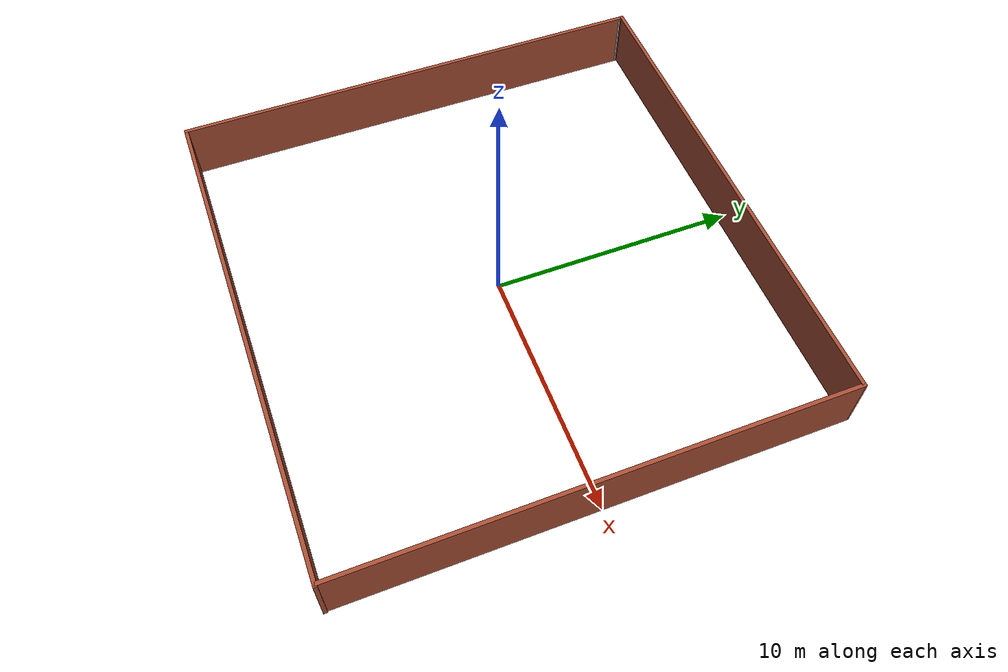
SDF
<?xml version='1.0'?>
<sdf version='1.6'>
  <model name='sample_world'>
    <pose frame=''>-0.087173 -0.037282 0 0 -0 0</pose>
    <link name='Wall_3'>
      <collision name='Wall_3_Collision'>
        <geometry>
          <box>
            <size>19.6806 0.15 2.5</size>
          </box>
        </geometry>
        <pose frame=''>0 0 1.25 0 -0 0</pose>
      </collision>
      <visual name='Wall_3_Visual'>
        <pose frame=''>0 0 1.25 0 -0 0</pose>
        <geometry>
          <box>
            <size>19.6806 0.15 2.5</size>
          </box>
        </geometry>
        <material>
          <script>
            <uri>file://media/materials/scripts/gazebo.material</uri>
            <name>Gazebo/Bricks</name>
          </script>
          <ambient>1 1 1 1</ambient>
        </material>
        <meta>
          <layer>0</layer>
        </meta>
      </visual>
      <pose frame=''>-10.0732 -0.06532 0 0 -0 -1.57318</pose>
    </link>
    <link name='Wall_4'>
      <collision name='Wall_4_Collision'>
        <geometry>
          <box>
            <size>20.343 0.15 2.5</size>
          </box>
        </geometry>
        <pose frame=''>0 0 1.25 0 -0 0</pose>
      </collision>
      <visual name='Wall_4_Visual'>
        <pose frame=''>0 0 1.25 0 -0 0</pose>
        <geometry>
          <box>
            <size>20.343 0.15 2.5</size>
          </box>
        </geometry>
        <material>
          <script>
            <uri>file://media/materials/scripts/gazebo.material</uri>
            <name>Gazebo/Bricks</name>
          </script>
          <ambient>1 1 1 1</ambient>
        </material>
        <meta>
          <layer>0</layer>
        </meta>
      </visual>
      <pose frame=''>9e-05 -9.83061 0 0 -0 0</pose>
    </link>
    <link name='Wall_5'>
      <collision name='Wall_5_Collision'>
        <geometry>
          <box>
            <size>19.75 0.15 2.5</size>
          </box>
        </geometry>
        <pose frame=''>0 0 1.25 0 -0 0</pose>
      </collision>
      <visual name='Wall_5_Visual'>
        <pose frame=''>0 0 1.25 0 -0 0</pose>
        <geometry>
          <box>
            <size>19.75 0.15 2.5</size>
          </box>
        </geometry>
        <material>
          <script>
            <uri>file://media/materials/scripts/gazebo.material</uri>
            <name>Gazebo/Bricks</name>
          </script>
          <ambient>1 1 1 1</ambient>
        </material>
        <meta>
          <layer>0</layer>
        </meta>
      </visual>
      <pose frame=''>10.0501 -0.030615 0 0 -0 1.5708</pose>
    </link>
    <link name='Wall_8'>
      <collision name='Wall_8_Collision'>
        <geometry>
          <box>
            <size>20.25 0.15 2.5</size>
          </box>
        </geometry>
        <pose frame=''>0 0 1.25 0 -0 0</pose>
      </collision>
      <visual name='Wall_8_Visual'>
        <pose frame=''>0 0 1.25 0 -0 0</pose>
        <geometry>
          <box>
            <size>20.25 0.15 2.5</size>
          </box>
        </geometry>
        <material>
          <script>
            <uri>file://media/materials/scripts/gazebo.material</uri>
            <name>Gazebo/Bricks</name>
          </script>
          <ambient>1 1 1 1</ambient>
        </material>
        <meta>
          <layer>0</layer>
        </meta>
      </visual>
      <pose frame=''>9e-05 9.79997 0 0 -0 3.13855</pose>
    </link>
    <link name='Wall_9'>
      <collision name='Wall_9_Collision'>
        <geometry>
          <box>
            <size>0.25 0.15 2.5</size>
          </box>
        </geometry>
        <pose frame=''>0 0 1.25 0 -0 0</pose>
      </collision>
      <visual name='Wall_9_Visual'>
        <pose frame=''>0 0 1.25 0 -0 0</pose>
        <geometry>
          <box>
            <size>0.25 0.15 2.5</size>
          </box>
        </geometry>
        <material>
          <script>
            <uri>file://media/materials/scripts/gazebo.material</uri>
            <name>Gazebo/Grey</name>
          </script>
          <ambient>1 1 1 1</ambient>
        </material>
        <meta>
          <layer>0</layer>
        </meta>
      </visual>
      <pose frame=''>-10.0499 9.74997 0 0 -0 -1.5708</pose>
    </link>
    <static>1</static>
  </model>
</sdf>
